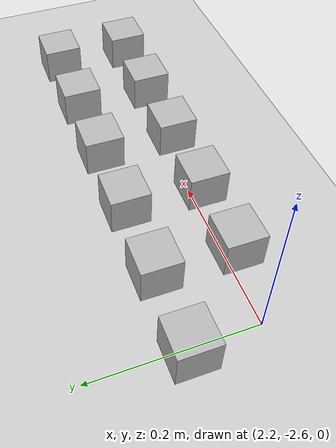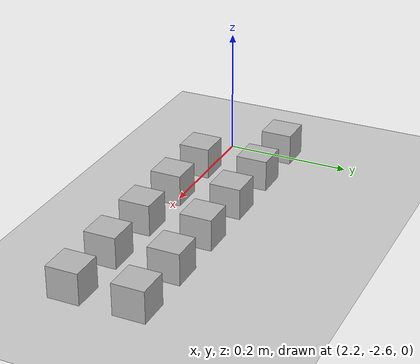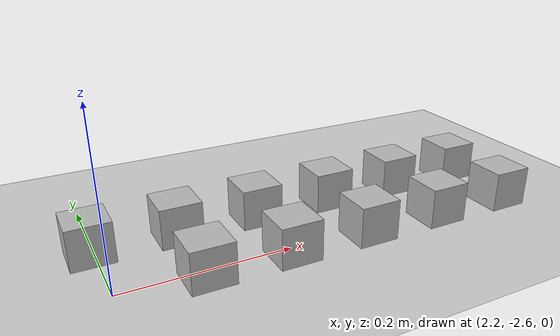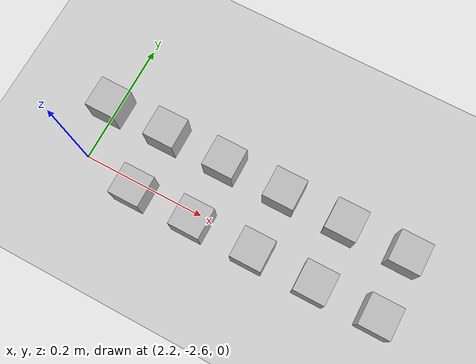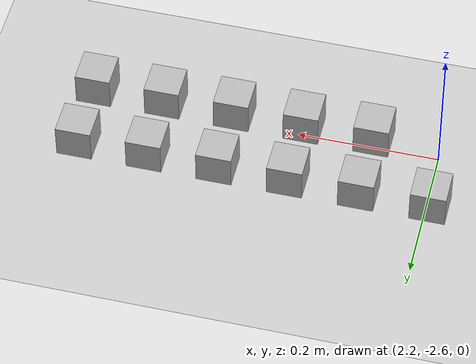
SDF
<sdf version="1.6">
 <world name="default">
  <model name="ground_plane">
   <static>1</static>
   <link name="link">
    <collision name="collision">
     <geometry><plane><normal>0 0 1</normal><size>100 100</size></plane></geometry>
     <surface><friction><ode><mu>100</mu><mu2>50</mu2></ode></friction></surface>
    </collision>
    <visual name="visual">
     <cast_shadows>0</cast_shadows>
     <geometry><plane><normal>0 0 1</normal><size>100 100</size></plane></geometry>
     <material>
      <script><uri>file://media/materials/scripts/gazebo.material</uri><name>Gazebo/Grey</name></script>
     </material>
    </visual>
   </link>
  </model>
  <model name="at2">
   <static>0</static>
   <link name="link">
    <inertial>
     <mass>0.01</mass>
     <inertia><ixx>4e-05</ixx><ixy>0</ixy><ixz>0</ixz><iyy>4e-05</iyy><iyz>0</iyz><izz>4e-05</izz></inertia>
    </inertial>
    <visual name="visual">
     <geometry><box><size>0.05 0.05 0.05</size></box></geometry>
     <material>
      <script>
       <uri>model://at0/materials/scripts</uri>
       <uri>model://at0/materials/textures</uri>
       <name>at0/Diffuse</name>
      </script>
     </material>
    </visual>
    <collision name="collision">
     <geometry><box><size>0.05 0.05 0.05</size></box></geometry>
     <surface><friction><ode><mu>0.8</mu><mu2>0.7</mu2></ode></friction></surface>
    </collision>
   </link>
   <pose>2.29496 -2.61338 0.024991 0 -2e-06 0</pose>
  </model>
  <model name="at3">
   <static>0</static>
   <link name="link">
    <inertial>
     <mass>0.01</mass>
     <inertia><ixx>4e-05</ixx><ixy>0</ixy><ixz>0</ixz><iyy>4e-05</iyy><iyz>0</iyz><izz>4e-05</izz></inertia>
    </inertial>
    <visual name="visual">
     <geometry><box><size>0.05 0.05 0.05</size></box></geometry>
     <material>
      <script>
       <uri>model://at0/materials/scripts</uri>
       <uri>model://at0/materials/textures</uri>
       <name>at0/Diffuse</name>
      </script>
     </material>
    </visual>
    <collision name="collision">
     <geometry><box><size>0.05 0.05 0.05</size></box></geometry>
     <surface><friction><ode><mu>0.8</mu><mu2>0.7</mu2></ode></friction></surface>
    </collision>
   </link>
   <pose>2.39496 -2.61338 0.024995 3.1e-05 1e-05 0</pose>
  </model>
  <model name="at4">
   <static>0</static>
   <link name="link">
    <inertial>
     <mass>0.01</mass>
     <inertia><ixx>4e-05</ixx><ixy>0</ixy><ixz>0</ixz><iyy>4e-05</iyy><iyz>0</iyz><izz>4e-05</izz></inertia>
    </inertial>
    <visual name="visual">
     <geometry><box><size>0.05 0.05 0.05</size></box></geometry>
     <material>
      <script>
       <uri>model://at0/materials/scripts</uri>
       <uri>model://at0/materials/textures</uri>
       <name>at0/Diffuse</name>
      </script>
     </material>
    </visual>
    <collision name="collision">
     <geometry><box><size>0.05 0.05 0.05</size></box></geometry>
     <surface><friction><ode><mu>0.8</mu><mu2>0.7</mu2></ode></friction></surface>
    </collision>
   </link>
   <pose>2.49496 -2.61338 0.024991 0 -2e-06 0</pose>
  </model>
  <model name="at5">
   <static>0</static>
   <link name="link">
    <inertial>
     <mass>0.01</mass>
     <inertia><ixx>4e-05</ixx><ixy>0</ixy><ixz>0</ixz><iyy>4e-05</iyy><iyz>0</iyz><izz>4e-05</izz></inertia>
    </inertial>
    <visual name="visual">
     <geometry><box><size>0.05 0.05 0.05</size></box></geometry>
     <material>
      <script>
       <uri>model://at0/materials/scripts</uri>
       <uri>model://at0/materials/textures</uri>
       <name>at0/Diffuse</name>
      </script>
     </material>
    </visual>
    <collision name="collision">
     <geometry><box><size>0.05 0.05 0.05</size></box></geometry>
     <surface><friction><ode><mu>0.8</mu><mu2>0.7</mu2></ode></friction></surface>
    </collision>
   </link>
   <pose>2.59496 -2.61338 0.024995 3.1e-05 1e-05 0</pose>
  </model>
  <model name="at6">
   <static>0</static>
   <link name="link">
    <inertial>
     <mass>0.01</mass>
     <inertia><ixx>4e-05</ixx><ixy>0</ixy><ixz>0</ixz><iyy>4e-05</iyy><iyz>0</iyz><izz>4e-05</izz></inertia>
    </inertial>
    <visual name="visual">
     <geometry><box><size>0.05 0.05 0.05</size></box></geometry>
     <material>
      <script>
       <uri>model://at0/materials/scripts</uri>
       <uri>model://at0/materials/textures</uri>
       <name>at0/Diffuse</name>
      </script>
     </material>
    </visual>
    <collision name="collision">
     <geometry><box><size>0.05 0.05 0.05</size></box></geometry>
     <surface><friction><ode><mu>0.8</mu><mu2>0.7</mu2></ode></friction></surface>
    </collision>
   </link>
   <pose>2.69496 -2.61338 0.024991 0 -2e-06 0</pose>
  </model>
  <model name="at9">
   <static>0</static>
   <link name="link">
    <inertial>
     <mass>0.01</mass>
     <inertia><ixx>4e-05</ixx><ixy>0</ixy><ixz>0</ixz><iyy>4e-05</iyy><iyz>0</iyz><izz>4e-05</izz></inertia>
    </inertial>
    <visual name="visual">
     <geometry><box><size>0.05 0.05 0.05</size></box></geometry>
     <material>
      <script>
       <uri>model://at0/materials/scripts</uri>
       <uri>model://at0/materials/textures</uri>
       <name>at0/Diffuse</name>
      </script>
     </material>
    </visual>
    <collision name="collision">
     <geometry><box><size>0.05 0.05 0.05</size></box></geometry>
     <surface><friction><ode><mu>0.8</mu><mu2>0.7</mu2></ode></friction></surface>
    </collision>
   </link>
   <pose>2.19496 -2.51338 0.024995 3.1e-05 1e-05 0</pose>
  </model>
  <model name="at10">
   <static>0</static>
   <link name="link">
    <inertial>
     <mass>0.01</mass>
     <inertia><ixx>4e-05</ixx><ixy>0</ixy><ixz>0</ixz><iyy>4e-05</iyy><iyz>0</iyz><izz>4e-05</izz></inertia>
    </inertial>
    <visual name="visual">
     <geometry><box><size>0.05 0.05 0.05</size></box></geometry>
     <material>
      <script>
       <uri>model://at0/materials/scripts</uri>
       <uri>model://at0/materials/textures</uri>
       <name>at0/Diffuse</name>
      </script>
     </material>
    </visual>
    <collision name="collision">
     <geometry><box><size>0.05 0.05 0.05</size></box></geometry>
     <surface><friction><ode><mu>0.8</mu><mu2>0.7</mu2></ode></friction></surface>
    </collision>
   </link>
   <pose>2.29496 -2.51338 0.024991 0 -2e-06 0</pose>
  </model>
  <model name="at11">
   <static>0</static>
   <link name="link">
    <inertial>
     <mass>0.01</mass>
     <inertia><ixx>4e-05</ixx><ixy>0</ixy><ixz>0</ixz><iyy>4e-05</iyy><iyz>0</iyz><izz>4e-05</izz></inertia>
    </inertial>
    <visual name="visual">
     <geometry><box><size>0.05 0.05 0.05</size></box></geometry>
     <material>
      <script>
       <uri>model://at0/materials/scripts</uri>
       <uri>model://at0/materials/textures</uri>
       <name>at0/Diffuse</name>
      </script>
     </material>
    </visual>
    <collision name="collision">
     <geometry><box><size>0.05 0.05 0.05</size></box></geometry>
     <surface><friction><ode><mu>0.8</mu><mu2>0.7</mu2></ode></friction></surface>
    </collision>
   </link>
   <pose>2.39496 -2.51338 0.024995 3.1e-05 1e-05 0</pose>
  </model>
  <model name="at12">
   <static>0</static>
   <link name="link">
    <inertial>
     <mass>0.01</mass>
     <inertia><ixx>4e-05</ixx><ixy>0</ixy><ixz>0</ixz><iyy>4e-05</iyy><iyz>0</iyz><izz>4e-05</izz></inertia>
    </inertial>
    <visual name="visual">
     <geometry><box><size>0.05 0.05 0.05</size></box></geometry>
     <material>
      <script>
       <uri>model://at0/materials/scripts</uri>
       <uri>model://at0/materials/textures</uri>
       <name>at0/Diffuse</name>
      </script>
     </material>
    </visual>
    <collision name="collision">
     <geometry><box><size>0.05 0.05 0.05</size></box></geometry>
     <surface><friction><ode><mu>0.8</mu><mu2>0.7</mu2></ode></friction></surface>
    </collision>
   </link>
   <pose>2.49496 -2.51338 0.024991 0 -2e-06 0</pose>
  </model>
  <model name="at13">
   <static>0</static>
   <link name="link">
    <inertial>
     <mass>0.01</mass>
     <inertia><ixx>4e-05</ixx><ixy>0</ixy><ixz>0</ixz><iyy>4e-05</iyy><iyz>0</iyz><izz>4e-05</izz></inertia>
    </inertial>
    <visual name="visual">
     <geometry><box><size>0.05 0.05 0.05</size></box></geometry>
     <material>
      <script>
       <uri>model://at0/materials/scripts</uri>
       <uri>model://at0/materials/textures</uri>
       <name>at0/Diffuse</name>
      </script>
     </material>
    </visual>
    <collision name="collision">
     <geometry><box><size>0.05 0.05 0.05</size></box></geometry>
     <surface><friction><ode><mu>0.8</mu><mu2>0.7</mu2></ode></friction></surface>
    </collision>
   </link>
   <pose>2.59496 -2.51338 0.024995 3.1e-05 1e-05 0</pose>
  </model>
  <model name="at14">
   <static>0</static>
   <link name="link">
    <inertial>
     <mass>0.01</mass>
     <inertia><ixx>4e-05</ixx><ixy>0</ixy><ixz>0</ixz><iyy>4e-05</iyy><iyz>0</iyz><izz>4e-05</izz></inertia>
    </inertial>
    <visual name="visual">
     <geometry><box><size>0.05 0.05 0.05</size></box></geometry>
     <material>
      <script>
       <uri>model://at0/materials/scripts</uri>
       <uri>model://at0/materials/textures</uri>
       <name>at0/Diffuse</name>
      </script>
     </material>
    </visual>
    <collision name="collision">
     <geometry><box><size>0.05 0.05 0.05</size></box></geometry>
     <surface><friction><ode><mu>0.8</mu><mu2>0.7</mu2></ode></friction></surface>
    </collision>
   </link>
   <pose>2.69496 -2.51338 0.024991 0 -2e-06 0</pose>
  </model>
 </world>
</sdf>
